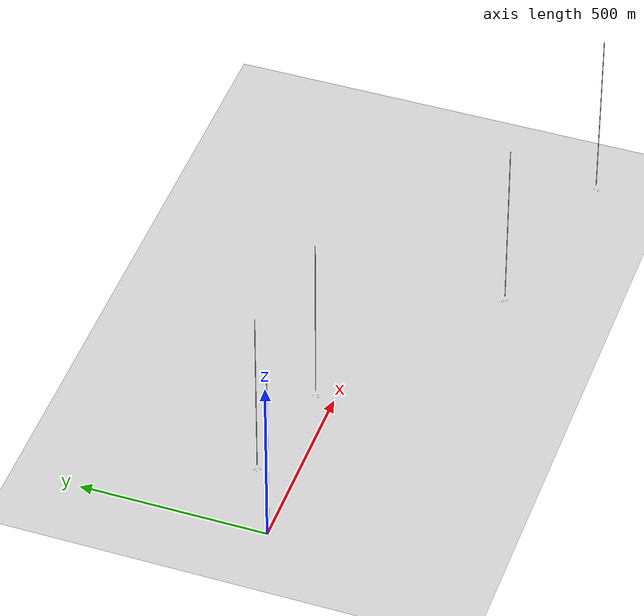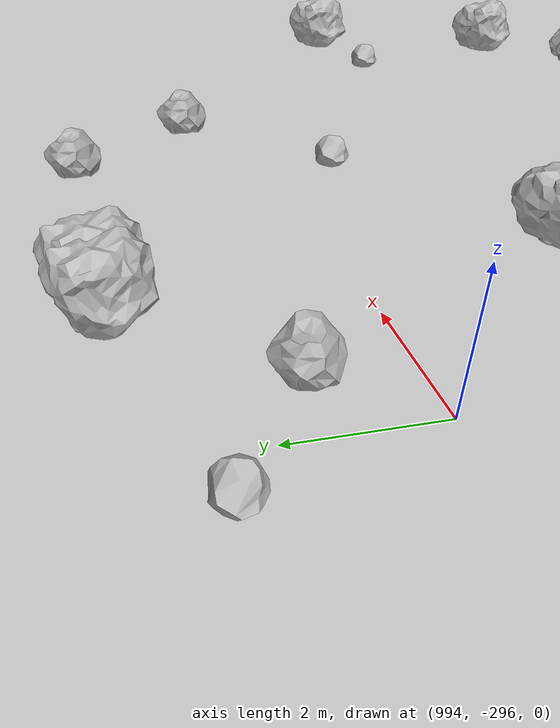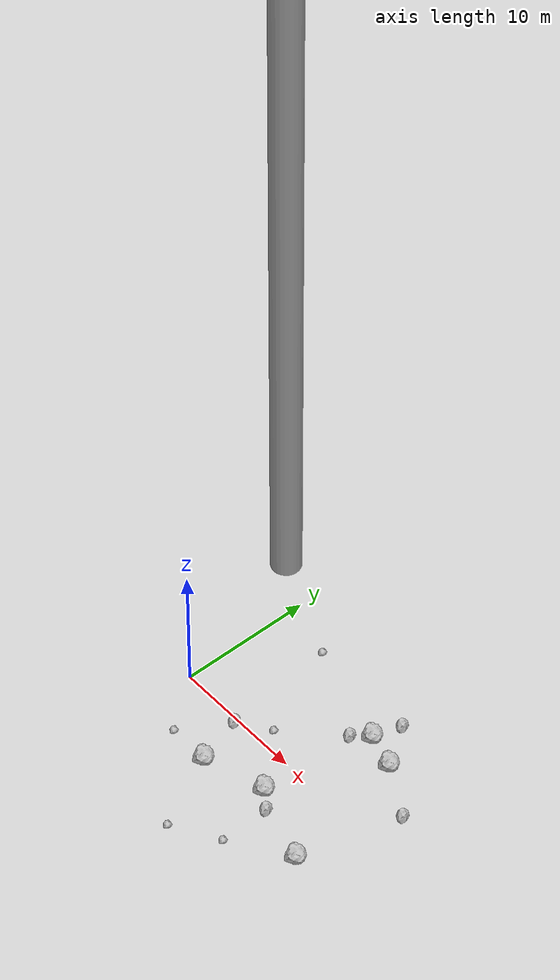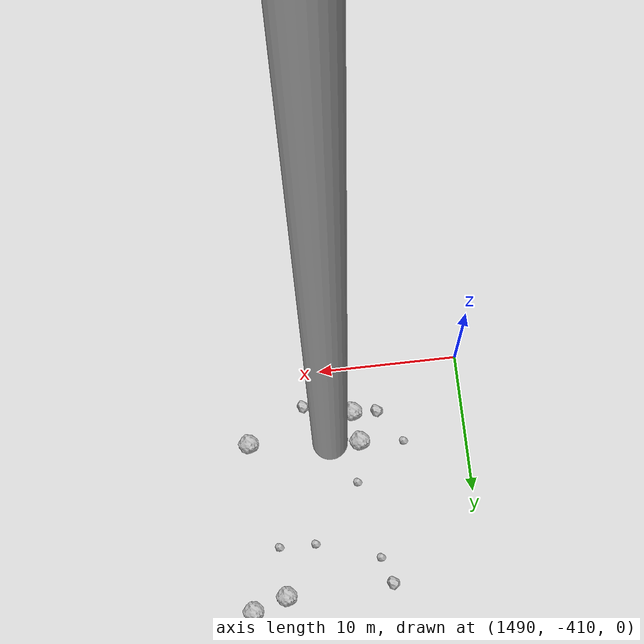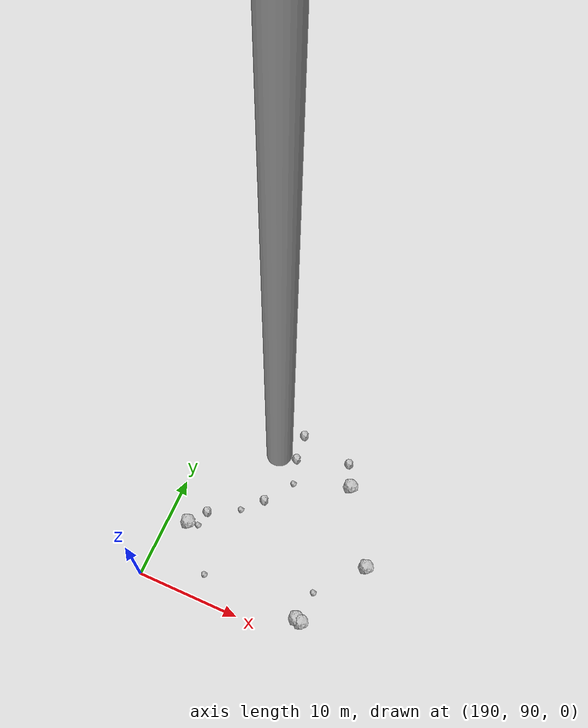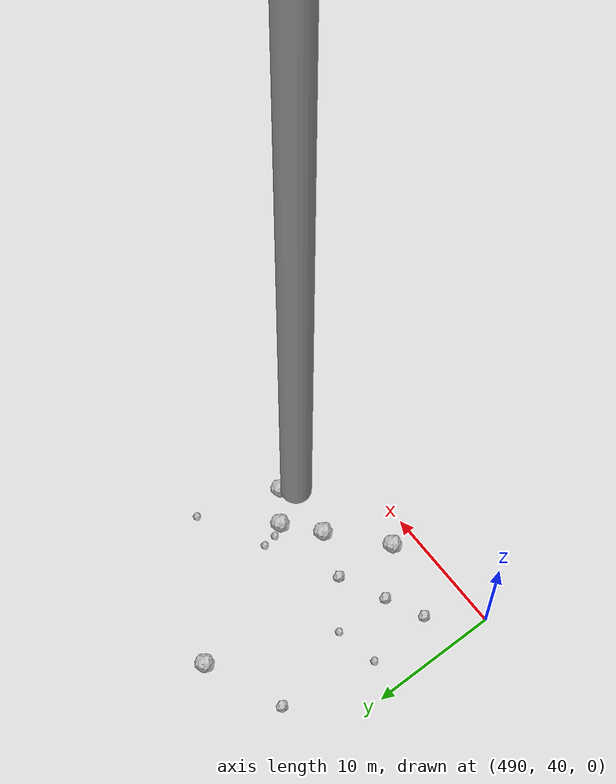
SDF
<?xml version="1.0" ?>
<sdf version="1.6">
  <world name="default">

    <include>
      <uri>model://custom_ground</uri>
    </include>

    <include>
      <uri>model://sun</uri>
    </include>

    <spherical_coordinates>
      <surface_model>EARTH_WGS84</surface_model>
      <latitude_deg>38.161479</latitude_deg>
      <longitude_deg>-122.454630</longitude_deg>
      <elevation>488.0</elevation>
      <heading_deg>90</heading_deg>
    </spherical_coordinates>

    <model name="rock1_0_0">
      <include>
        <uri>model://rock1</uri>
        <pose>10.761918944124425 -2.602551228834706 0.5 0 0 0</pose>
      </include>
    </model>
    <model name="rock1_0_1">
      <include>
        <uri>model://rock1</uri>
        <pose>16.344000821745478 -4.6850584400275945 0.5 0 0 0</pose>
      </include>
    </model>
    <model name="rock1_0_2">
      <include>
        <uri>model://rock1</uri>
        <pose>6.152214037468631 -3.9470862898037407 0.5 0 0 0</pose>
      </include>
    </model>
    <model name="rock1_0_3">
      <include>
        <uri>model://rock1</uri>
        <pose>14.659701920637024 5.0020620696415445 0.5 0 0 0</pose>
      </include>
    </model>
    <model name="rock1_0_4">
      <include>
        <uri>model://rock1</uri>
        <pose>12.137425138478923 5.777151081162891 0.5 0 0 0</pose>
      </include>
    </model>
    <model name="rock2_0_0">
      <include>
        <uri>model://rock2</uri>
        <pose>12.103564832590905 -3.5843134520279785 0.3 0 0 0</pose>
      </include>
    </model>
    <model name="rock2_0_1">
      <include>
        <uri>model://rock2</uri>
        <pose>18.422847465897632 2.8273020318798103 0.3 0 0 0</pose>
      </include>
    </model>
    <model name="rock2_0_2">
      <include>
        <uri>model://rock2</uri>
        <pose>5.066144469401877 -0.3388618974309985 0.3 0 0 0</pose>
      </include>
    </model>
    <model name="rock2_0_3">
      <include>
        <uri>model://rock2</uri>
        <pose>11.071965239314094 4.709544861519285 0.3 0 0 0</pose>
      </include>
    </model>
    <model name="rock2_0_4">
      <include>
        <uri>model://rock2</uri>
        <pose>12.76278664337319 7.9310846879334065 0.3 0 0 0</pose>
      </include>
    </model>
    <model name="rock3_0_0">
      <include>
        <uri>model://rock3</uri>
        <pose>8.758526664437852 -9.266490257277354 0.2 0 0 0</pose>
      </include>
    </model>
    <model name="rock3_0_1">
      <include>
        <uri>model://rock3</uri>
        <pose>7.309003684037174 1.1806825507069156 0.2 0 0 0</pose>
      </include>
    </model>
    <model name="rock3_0_2">
      <include>
        <uri>model://rock3</uri>
        <pose>12.101616417658171 -7.332983123321366 0.2 0 0 0</pose>
      </include>
    </model>
    <model name="rock3_0_3">
      <include>
        <uri>model://rock3</uri>
        <pose>4.280956089782732 8.199208879513694 0.2 0 0 0</pose>
      </include>
    </model>
    <model name="rock3_0_4">
      <include>
        <uri>model://rock3</uri>
        <pose>2.887372246633393 -3.863222967551452 0.2 0 0 0</pose>
      </include>
    </model>
    <model name="rock1_1_0">
      <include>
        <uri>model://rock1</uri>
        <pose>205.78806409206786 91.93028269640008 0.5 0 0 0</pose>
      </include>
    </model>
    <model name="rock1_1_1">
      <include>
        <uri>model://rock1</uri>
        <pose>209.36029166955183 99.24090270423618 0.5 0 0 0</pose>
      </include>
    </model>
    <model name="rock1_1_2">
      <include>
        <uri>model://rock1</uri>
        <pose>204.93955776402345 106.02654854985657 0.5 0 0 0</pose>
      </include>
    </model>
    <model name="rock1_1_3">
      <include>
        <uri>model://rock1</uri>
        <pose>205.24833002138365 92.08513536619114 0.5 0 0 0</pose>
      </include>
    </model>
    <model name="rock1_1_4">
      <include>
        <uri>model://rock1</uri>
        <pose>191.97081775373738 96.3455836626038 0.5 0 0 0</pose>
      </include>
    </model>
    <model name="rock2_1_0">
      <include>
        <uri>model://rock2</uri>
        <pose>198.65407304190944 109.11862894251261 0.3 0 0 0</pose>
      </include>
    </model>
    <model name="rock2_1_1">
      <include>
        <uri>model://rock2</uri>
        <pose>203.86413167819137 108.18558212433636 0.3 0 0 0</pose>
      </include>
    </model>
    <model name="rock2_1_2">
      <include>
        <uri>model://rock2</uri>
        <pose>197.75760545586476 101.3817667226344 0.3 0 0 0</pose>
      </include>
    </model>
    <model name="rock2_1_3">
      <include>
        <uri>model://rock2</uri>
        <pose>198.92153828736176 106.54868844918768 0.3 0 0 0</pose>
      </include>
    </model>
    <model name="rock2_1_4">
      <include>
        <uri>model://rock2</uri>
        <pose>193.18750308100678 98.06066451150346 0.3 0 0 0</pose>
      </include>
    </model>
    <model name="rock3_1_0">
      <include>
        <uri>model://rock3</uri>
        <pose>196.0769872659536 99.56792780749686 0.2 0 0 0</pose>
      </include>
    </model>
    <model name="rock3_1_1">
      <include>
        <uri>model://rock3</uri>
        <pose>192.93721917105105 96.47104727866127 0.2 0 0 0</pose>
      </include>
    </model>
    <model name="rock3_1_2">
      <include>
        <uri>model://rock3</uri>
        <pose>195.57905558253472 92.35193703474167 0.2 0 0 0</pose>
      </include>
    </model>
    <model name="rock3_1_3">
      <include>
        <uri>model://rock3</uri>
        <pose>199.6647780595658 104.06594517545295 0.2 0 0 0</pose>
      </include>
    </model>
    <model name="rock3_1_4">
      <include>
        <uri>model://rock3</uri>
        <pose>205.72471562724246 94.97556291840748 0.2 0 0 0</pose>
      </include>
    </model>
    <model name="rock1_2_0">
      <include>
        <uri>model://rock1</uri>
        <pose>499.989160679644 58.575735287667435 0.5 0 0 0</pose>
      </include>
    </model>
    <model name="rock1_2_1">
      <include>
        <uri>model://rock1</uri>
        <pose>507.67517963928594 45.69444192572073 0.5 0 0 0</pose>
      </include>
    </model>
    <model name="rock1_2_2">
      <include>
        <uri>model://rock1</uri>
        <pose>498.8371351194039 41.79835615199328 0.5 0 0 0</pose>
      </include>
    </model>
    <model name="rock1_2_3">
      <include>
        <uri>model://rock1</uri>
        <pose>505.3975272340822 47.45389343550432 0.5 0 0 0</pose>
      </include>
    </model>
    <model name="rock1_2_4">
      <include>
        <uri>model://rock1</uri>
        <pose>502.8551865539119 45.298144462705814 0.5 0 0 0</pose>
      </include>
    </model>
    <model name="rock2_2_0">
      <include>
        <uri>model://rock2</uri>
        <pose>495.8318429945165 44.888398122664334 0.3 0 0 0</pose>
      </include>
    </model>
    <model name="rock2_2_1">
      <include>
        <uri>model://rock2</uri>
        <pose>493.9571891032558 56.02888348309277 0.3 0 0 0</pose>
      </include>
    </model>
    <model name="rock2_2_2">
      <include>
        <uri>model://rock2</uri>
        <pose>507.0721187654283 45.295088392709324 0.3 0 0 0</pose>
      </include>
    </model>
    <model name="rock2_2_3">
      <include>
        <uri>model://rock2</uri>
        <pose>499.297930467264 46.55283008136587 0.3 0 0 0</pose>
      </include>
    </model>
    <model name="rock2_2_4">
      <include>
        <uri>model://rock2</uri>
        <pose>492.9777344161391 43.50051297540406 0.3 0 0 0</pose>
      </include>
    </model>
    <model name="rock3_2_0">
      <include>
        <uri>model://rock3</uri>
        <pose>495.87037421923463 49.19690460466182 0.2 0 0 0</pose>
      </include>
    </model>
    <model name="rock3_2_1">
      <include>
        <uri>model://rock3</uri>
        <pose>509.7592464465106 52.00831208116161 0.2 0 0 0</pose>
      </include>
    </model>
    <model name="rock3_2_2">
      <include>
        <uri>model://rock3</uri>
        <pose>504.71283839268204 49.365008835865225 0.2 0 0 0</pose>
      </include>
    </model>
    <model name="rock3_2_3">
      <include>
        <uri>model://rock3</uri>
        <pose>504.85231287220927 48.296301650892715 0.2 0 0 0</pose>
      </include>
    </model>
    <model name="rock3_2_4">
      <include>
        <uri>model://rock3</uri>
        <pose>492.51856850165 48.556310940718284 0.2 0 0 0</pose>
      </include>
    </model>
    <model name="rock1_3_0">
      <include>
        <uri>model://rock1</uri>
        <pose>997.3193766668138 -292.37949222041954 0.5 0 0 0</pose>
      </include>
    </model>
    <model name="rock1_3_1">
      <include>
        <uri>model://rock1</uri>
        <pose>996.7449295967292 -292.4296392203176 0.5 0 0 0</pose>
      </include>
    </model>
    <model name="rock1_3_2">
      <include>
        <uri>model://rock1</uri>
        <pose>1008.2938218711516 -299.4038128820744 0.5 0 0 0</pose>
      </include>
    </model>
    <model name="rock1_3_3">
      <include>
        <uri>model://rock1</uri>
        <pose>1007.1037087546681 -303.55986964712827 0.5 0 0 0</pose>
      </include>
    </model>
    <model name="rock1_3_4">
      <include>
        <uri>model://rock1</uri>
        <pose>997.536105988477 -299.50277472888536 0.5 0 0 0</pose>
      </include>
    </model>
    <model name="rock2_3_0">
      <include>
        <uri>model://rock2</uri>
        <pose>1002.7616295150095 -294.64289929356937 0.3 0 0 0</pose>
      </include>
    </model>
    <model name="rock2_3_1">
      <include>
        <uri>model://rock2</uri>
        <pose>995.0514181766497 -294.65351530858464 0.3 0 0 0</pose>
      </include>
    </model>
    <model name="rock2_3_2">
      <include>
        <uri>model://rock2</uri>
        <pose>1005.2225295942513 -305.1335339067327 0.3 0 0 0</pose>
      </include>
    </model>
    <model name="rock2_3_3">
      <include>
        <uri>model://rock2</uri>
        <pose>1001.1418105572772 -292.37899832072645 0.3 0 0 0</pose>
      </include>
    </model>
    <model name="rock2_3_4">
      <include>
        <uri>model://rock2</uri>
        <pose>1005.7906883671574 -305.31413205016315 0.3 0 0 0</pose>
      </include>
    </model>
    <model name="rock3_3_0">
      <include>
        <uri>model://rock3</uri>
        <pose>1006.0135086574638 -299.89265344646856 0.2 0 0 0</pose>
      </include>
    </model>
    <model name="rock3_3_1">
      <include>
        <uri>model://rock3</uri>
        <pose>1007.535817130394 -304.4408424221664 0.2 0 0 0</pose>
      </include>
    </model>
    <model name="rock3_3_2">
      <include>
        <uri>model://rock3</uri>
        <pose>1005.1540802904907 -306.270250554409 0.2 0 0 0</pose>
      </include>
    </model>
    <model name="rock3_3_3">
      <include>
        <uri>model://rock3</uri>
        <pose>993.3856307125857 -293.4325761157257 0.2 0 0 0</pose>
      </include>
    </model>
    <model name="rock3_3_4">
      <include>
        <uri>model://rock3</uri>
        <pose>1000.6184712633346 -297.0493094839929 0.2 0 0 0</pose>
      </include>
    </model>
    <model name="rock1_4_0">
      <include>
        <uri>model://rock1</uri>
        <pose>1505.611158595348 -405.06650768905 0.5 0 0 0</pose>
      </include>
    </model>
    <model name="rock1_4_1">
      <include>
        <uri>model://rock1</uri>
        <pose>1497.6545460887467 -404.4311287545223 0.5 0 0 0</pose>
      </include>
    </model>
    <model name="rock1_4_2">
      <include>
        <uri>model://rock1</uri>
        <pose>1497.953152865408 -406.6470208147803 0.5 0 0 0</pose>
      </include>
    </model>
    <model name="rock1_4_3">
      <include>
        <uri>model://rock1</uri>
        <pose>1504.0052559839155 -393.897063467652 0.5 0 0 0</pose>
      </include>
    </model>
    <model name="rock1_4_4">
      <include>
        <uri>model://rock1</uri>
        <pose>1506.4185529673011 -393.109960503158 0.5 0 0 0</pose>
      </include>
    </model>
    <model name="rock2_4_0">
      <include>
        <uri>model://rock2</uri>
        <pose>1501.432284030065 -407.44432062220176 0.3 0 0 0</pose>
      </include>
    </model>
    <model name="rock2_4_1">
      <include>
        <uri>model://rock2</uri>
        <pose>1496.171062228845 -406.5632220571144 0.3 0 0 0</pose>
      </include>
    </model>
    <model name="rock2_4_2">
      <include>
        <uri>model://rock2</uri>
        <pose>1496.4624858616241 -394.02288721796265 0.3 0 0 0</pose>
      </include>
    </model>
    <model name="rock2_4_3">
      <include>
        <uri>model://rock2</uri>
        <pose>1500.5384767409723 -405.58310692056546 0.3 0 0 0</pose>
      </include>
    </model>
    <model name="rock2_4_4">
      <include>
        <uri>model://rock2</uri>
        <pose>1506.0219072227073 -392.20569362523725 0.3 0 0 0</pose>
      </include>
    </model>
    <model name="rock3_4_0">
      <include>
        <uri>model://rock3</uri>
        <pose>1504.141146623767 -397.4720102163589 0.2 0 0 0</pose>
      </include>
    </model>
    <model name="rock3_4_1">
      <include>
        <uri>model://rock3</uri>
        <pose>1494.4877030782573 -404.1856226149631 0.2 0 0 0</pose>
      </include>
    </model>
    <model name="rock3_4_2">
      <include>
        <uri>model://rock3</uri>
        <pose>1497.079759091946 -395.95357524189234 0.2 0 0 0</pose>
      </include>
    </model>
    <model name="rock3_4_3">
      <include>
        <uri>model://rock3</uri>
        <pose>1501.5706620271044 -397.41678734936113 0.2 0 0 0</pose>
      </include>
    </model>
    <model name="rock3_4_4">
      <include>
        <uri>model://rock3</uri>
        <pose>1498.1166854397577 -401.5180005725264 0.2 0 0 0</pose>
      </include>
    </model>

    <model name="cylinder_1">
      <static>true</static>
      <link name="link">
        <visual name="visual">
          <geometry>
            <cylinder>
              <radius>1</radius>
              <length>500</length>
            </cylinder>
          </geometry>
        </visual>
      </link>
      <pose>10 0 270 0 0 0</pose>
    </model>

    <model name="cylinder_2">
      <static>true</static>
      <link name="link">
        <visual name="visual">
          <geometry>
            <cylinder>
              <radius>1</radius>
              <length>500</length>
            </cylinder>
          </geometry>
        </visual>
      </link>
      <pose>200 100 270 0 0 0</pose>
    </model>

    <model name="cylinder_3">
      <static>true</static>
      <link name="link">
        <visual name="visual">
          <geometry>
            <cylinder>
              <radius>1</radius>
              <length>500</length>
            </cylinder>
          </geometry>
        </visual>
      </link>
      <pose>500 50 270 0 0 0</pose>
    </model>

    <model name="cylinder_4">
      <static>true</static>
      <link name="link">
        <visual name="visual">
          <geometry>
            <cylinder>
              <radius>1</radius>
              <length>500</length>
            </cylinder>
          </geometry>
        </visual>
      </link>
      <pose>1000 -300 270 0 0 0</pose>
    </model>

    <model name="cylinder_5">
      <static>true</static>
      <link name="link">
        <visual name="visual">
          <geometry>
            <cylinder>
              <radius>1</radius>
              <length>500</length>
            </cylinder>
          </geometry>
        </visual>
      </link>
      <pose>1500 -400 270 0 0 0</pose>
    </model>

  </world>
</sdf>

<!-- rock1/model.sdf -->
<sdf version="1.6">
  <model name="rock1">
    <static>true</static> <!-- Set to true if the model should not move -->
    <pose>0 0 0 0 0 0</pose>

    <!--z offset is 0.5 for full scale-->

    <link name="link">
      <collision name="rock1_collision">
        <geometry>
          <mesh>
            <uri>model://meshes/rock1.dae</uri>
          </mesh>
        </geometry>
      </collision>
      <visual name="rock1_visual">
        <geometry>
          <mesh>
            <uri>model://meshes/rock1.dae</uri>
          </mesh>
        </geometry>
        <material>
          <script>
            <uri>model://materials/scripts/sand_pebbles.material</uri>
            <name>custom_ground/Image</name>
          </script>
        </material>
      </visual>
    </link>
  </model>
</sdf>

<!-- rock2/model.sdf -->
<sdf version="1.6">
  <model name="rock2">
    <static>true</static> <!-- Set to true if the model should not move -->
    <pose>0 0 0 0 0 0</pose>

    <!--z offset is 0.3 for full scale-->

    <link name="link">
      <collision name="rock2_collision">
        <geometry>
          <mesh>
            <uri>model://meshes/rock2.dae</uri>
          </mesh>
        </geometry>
      </collision>
      <visual name="rock2_visual">
        <geometry>
          <mesh>
            <uri>model://meshes/rock2.dae</uri>
          </mesh>
        </geometry>
        <material>
          <script>
            <uri>model://materials/scripts/sand_pebbles.material</uri>
            <name>custom_ground/Image</name>
          </script>
        </material>
      </visual>
    </link>
  </model>
</sdf>

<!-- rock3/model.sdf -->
<sdf version="1.6">
  <model name="rock3">
    <static>true</static> <!-- Set to true if the model should not move -->
    <pose>0 0 0 0 0 0</pose>

    <!--z offset is 0.2 for full scale-->

    <link name="link">
      <collision name="rock3_collision">
        <geometry>
          <mesh>
            <uri>model://meshes/rock3.dae</uri>
          </mesh>
        </geometry>
      </collision>
      <visual name="rock3_visual">
        <geometry>
          <mesh>
            <uri>model://meshes/rock3.dae</uri>
          </mesh>
        </geometry>
        <material>
          <script>
            <uri>model://materials/scripts/sand_pebbles.material</uri>
            <name>custom_ground/Image</name>
          </script>
        </material>
      </visual>
    </link>
  </model>
</sdf>

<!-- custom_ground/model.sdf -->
<sdf version="1.6">
  <model name="custom_ground">
    <static>true</static> <!-- Ground is static and immovable -->
    <link name="ground_link">
      <pose>240 0 0 0 0 0</pose> <!-- Position and orientation relative to the world -->
      <!-- Visual Representation -->
      <visual name="ground_visual">
        <geometry>
          <plane>
            <normal>0 0 1</normal> <!-- Upward facing plane -->
            <size>500 500</size> <!-- Size of the plane -->
          </plane>
        </geometry>
        <material>
          <script>
            <uri>model://materials/scripts/sand_pebbles.material</uri>
            <name>custom_ground/Image</name>
          </script>
        </material>
      </visual>

      <!-- Collision Representation -->
      <collision name="ground_collision">
        <geometry>
          <plane>
            <normal>0 0 1</normal>
            <size>100 100</size>
          </plane>
        </geometry>
      </collision>

    </link>
  </model>
</sdf>
